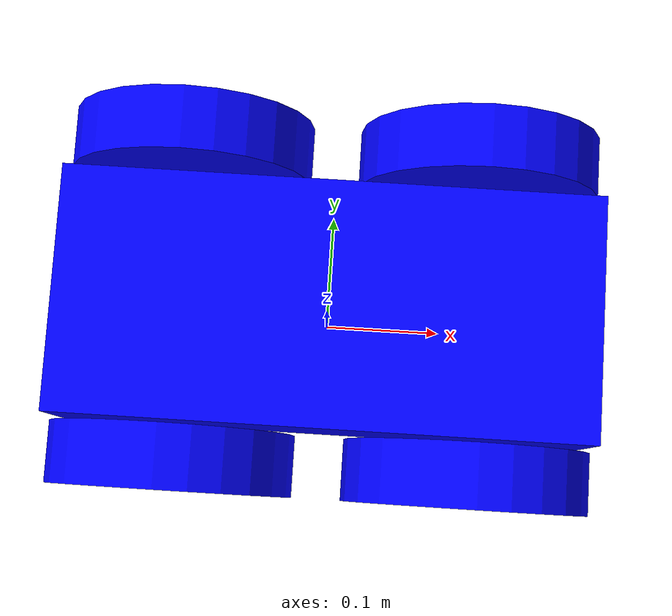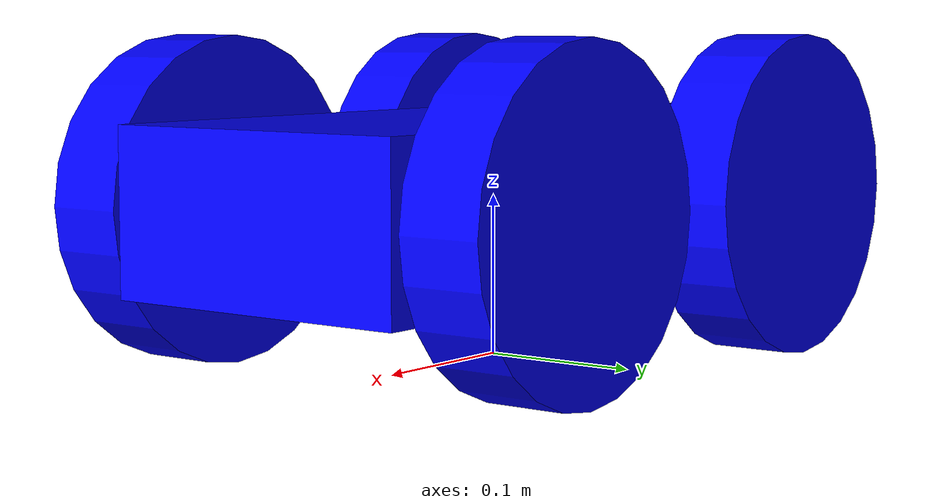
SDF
<?xml version='1.0'?>
<sdf version='1.4'>
  <model name="my_robot">
		<!-- Ignored by physics for building purposes-->
		<static>false</static>

<!-- Chassis -->

		<link name='chassis'>
      <pose>0 0 .1 0 0 0</pose>
			<inertial><mass>200</mass></inertial>

      <collision name='collision'>
        <geometry>
          <box>
            <size>.44 .2 .1</size>
          </box>
        </geometry>
      </collision>
      <visual name='visual'>
        <geometry>
          <box>
            <size>.44 .2 .1</size>
          </box>
        </geometry>
				<material>
					<ambient>0 0 1 1</ambient>
					<diffuse>0 0 1 1</diffuse>
					<specular>0 0 1 1</specular>
					<emissive>0 0 1 1</emissive>
        </material>
      </visual>

<!-- Sensors -->
		<!-- 15x1 cameras act as 15 colour sensors -->

<sensor name="colour_sensor_1" type="camera">
  <camera>
    <horizontal_fov>1.5707</horizontal_fov>
    <image>
      <width>30</width>
      <height>1</height>
    </image>
    <clip>
      <near>0.001</near>
      <!-- Sensor range -->
      <far>5</far>
    </clip>
  </camera>
 <pose> .15 0 .05 0 0 0.785</pose>
  <plugin name="camera_controller" filename="libgazebo_ros_camera.so">
    <alwaysOn>true</alwaysOn>
    <cameraName>front_colour_sensor_1</cameraName>
    <imageTopicName>image_raw</imageTopicName>
    <cameraInfoTopicName>camera_info</cameraInfoTopicName>
    <frameName>camera_link</frameName>
    <hackBaseline>0.07</hackBaseline>
    <distortionK1>0.0</distortionK1>
    <distortionK2>0.0</distortionK2>
    <distortionK3>0.0</distortionK3>
    <distortionT1>0.0</distortionT1>
    <distortionT2>0.0</distortionT2>
  </plugin>
  <always_on>1</always_on>
 <visualize>false</visualize>
</sensor>

<sensor name="colour_sensor_2" type="camera">
  <camera>
    <horizontal_fov>1.5707</horizontal_fov>
    <image>
      <width>30</width>
      <height>1</height>
    </image>
    <clip>
      <near>0.001</near>
      <!-- Sensor range -->
      <far>5</far>
    </clip>
  </camera>
 	<pose> .15 0 .05 0 0 -0.785</pose>
  <plugin name="camera_controller" filename="libgazebo_ros_camera.so">
    <alwaysOn>true</alwaysOn>
    <cameraName>front_colour_sensor_2</cameraName>
    <imageTopicName>image_raw</imageTopicName>
    <cameraInfoTopicName>camera_info</cameraInfoTopicName>
    <frameName>camera_link</frameName>
    <hackBaseline>0.07</hackBaseline>
    <distortionK1>0.0</distortionK1>
    <distortionK2>0.0</distortionK2>
    <distortionK3>0.0</distortionK3>
    <distortionT1>0.0</distortionT1>
    <distortionT2>0.0</distortionT2>
  </plugin>
  <always_on>1</always_on>
 <visualize>false</visualize>
</sensor>

<!-- Range sensors -->

<sensor name="laserscanner" type="ray">
  <visualize>false</visualize>
  <ray>
    <scan>
      <horizontal>
        <samples>60</samples>
        <min_angle>-1.5707</min_angle>
        <max_angle>1.5707</max_angle>
      </horizontal>
      <vertical>
        <samples>1</samples>
				<!-- Since 60 square pixels cover pi/2, and camera is 60x1, pixel height is (pi/2)/60 so min/max angle = +- pi/(2*60*2)-->
        <min_angle>-0.01308996939</min_angle>
        <max_angle>0.01308996939</max_angle>
      </vertical>
    </scan>
    <range>
      <min>0.001</min>
      <max>4</max>
      <resolution>30</resolution>
    </range>
  </ray>
 	<pose> .15 0 .05 0 0 0</pose>
  <plugin name="gazebo_ros_base_scan_link_controller" filename="libgazebo_ros_laser.so">
    <gaussianNoise>0.005</gaussianNoise>
    <alwaysOn>true</alwaysOn>
    <topicName>scan_sensor</topicName>
  </plugin>
</sensor>
 		</link>

<!-- Left Front wheel -->

		<link name="left_front_wheel">
		  <pose>0.12 0.13 0.1 0 1.5707 1.5707</pose>
		  <inertial><mass>30</mass></inertial>
		  <collision name="collision">
		    <geometry>
		      <cylinder>
		        <radius>.1</radius>
		        <length>.05</length>
		      </cylinder>
		    </geometry>

        <surface>
          <friction>
            <ode>
              <mu>0.5</mu>
              <mu2>0.5</mu2>
            </ode>
          </friction>
        </surface>
		  </collision>
		  <visual name="visual">
		    <geometry>
		      <cylinder>
		        <radius>.1</radius>
		        <length>.05</length>
		      </cylinder>
		    </geometry>
				<material>
					<ambient>0 0 1 1</ambient>
					<diffuse>0 0 1 1</diffuse>
					<specular>0 0 1 1</specular>
					<emissive>0 0 1 1</emissive>
        </material>
		  </visual>
		</link>

<!-- Right Front wheel -->

		<link name="right_front_wheel">
		  <pose>0.12 -0.13 0.1 0 1.5707 1.5707</pose>
		  <inertial><mass>30</mass></inertial>
		  <collision name="collision">
		    <geometry>
		      <cylinder>
		        <radius>.1</radius>
		        <length>.05</length>
		      </cylinder>
		    </geometry>

        <surface>
          <friction>
            <ode>
              <mu>0.5</mu>
              <mu2>0.5</mu2>
            </ode>
          </friction>
        </surface>
		  </collision>
		  <visual name="visual">
		    <geometry>
		      <cylinder>
		        <radius>.1</radius>
		        <length>.05</length>
		      </cylinder>
		    </geometry>
				<material>
					<ambient>0 0 1 1</ambient>
					<diffuse>0 0 1 1</diffuse>
					<specular>0 0 1 1</specular>
					<emissive>0 0 1 1</emissive>
        </material>
		  </visual>
		</link>

<!-- Left Back wheel -->

		<link name="left_back_wheel">
		  <pose>-0.12 0.13 0.1 0 1.5707 1.5707</pose>
		  <inertial><mass>30</mass></inertial>
		  <collision name="collision">
		    <geometry>
		      <cylinder>
		        <radius>.1</radius>
		        <length>.05</length>
		      </cylinder>
		    </geometry>

        <surface>
          <friction>
            <ode>
              <mu>0.5</mu>
              <mu2>0.5</mu2>
            </ode>
          </friction>
        </surface>
		  </collision>
		  <visual name="visual">
		    <geometry>
		      <cylinder>
		        <radius>.1</radius>
		        <length>.05</length>
		      </cylinder>
		    </geometry>
				<material>
					<ambient>0 0 1 1</ambient>
					<diffuse>0 0 1 1</diffuse>
					<specular>0 0 1 1</specular>
					<emissive>0 0 1 1</emissive>
        </material>
		  </visual>
		</link>

<!-- Right Back wheel -->

		<link name="right_back_wheel">
		  <pose>-0.12 -0.13 0.1 0 1.5707 1.5707</pose>
		  <inertial><mass>30</mass></inertial>
		  <collision name="collision">
		    <geometry>
		      <cylinder>
		        <radius>.1</radius>
		        <length>.05</length>
		      </cylinder>
		    </geometry>

        <surface>
          <friction>
            <ode>
              <mu>0.5</mu>
              <mu2>0.5</mu2>
            </ode>
          </friction>
        </surface>
		  </collision>
		  <visual name="visual">
		    <geometry>
		      <cylinder>
		        <radius>.1</radius>
		        <length>.05</length>
		      </cylinder>
		    </geometry>
				<material>
					<ambient>0 0 1 1</ambient>
					<diffuse>0 0 1 1</diffuse>
					<specular>0 0 1 1</specular>
					<emissive>0 0 1 1</emissive>
        </material>
		  </visual>
		</link>

<!-- Wheel joints -->

    <joint type="revolute" name="left_front">
      <pose>0 0 -0.03 0 0 0</pose>
      <child>left_front_wheel</child>
      <parent>chassis</parent>
      <axis>
        <xyz>0 1 0</xyz>
      </axis>
    </joint>

    <joint type="revolute" name="right_front">
      <pose>0 0 0.03 0 0 0</pose>
      <child>right_front_wheel</child>
      <parent>chassis</parent>
      <axis>
        <xyz>0 1 0</xyz>
      </axis>
    </joint>

    <joint type="revolute" name="left_rear">
      <pose>0 0 -0.03 0 0 0</pose>
      <child>left_back_wheel</child>
      <parent>chassis</parent>
      <axis>
        <xyz>0 1 0</xyz>
      </axis>
    </joint>

    <joint type="revolute" name="right_rear">
      <pose>0 0 0.03 0 0 0</pose>
      <child>right_back_wheel</child>
      <parent>chassis</parent>
      <axis>
        <xyz>0 1 0</xyz>
      </axis>
    </joint>

<!-- Plugins -->

  <plugin name="skid_steer_drive_controller" filename="libgazebo_ros_skid_steer_drive.so">
    <updateRate>99999</updateRate>
    <leftFrontJoint>left_front</leftFrontJoint>
    <rightFrontJoint>right_front</rightFrontJoint>
    <leftRearJoint>left_rear</leftRearJoint>
    <rightRearJoint>right_rear</rightRearJoint>
    <wheelSeparation>0.25</wheelSeparation>
    <wheelDiameter>0.2</wheelDiameter>
    <robotBaseFrame>base_footprint</robotBaseFrame>
    <torque>20</torque>
    <commandTopic>cmd_vel</commandTopic>
  </plugin>

  </model>
</sdf>
